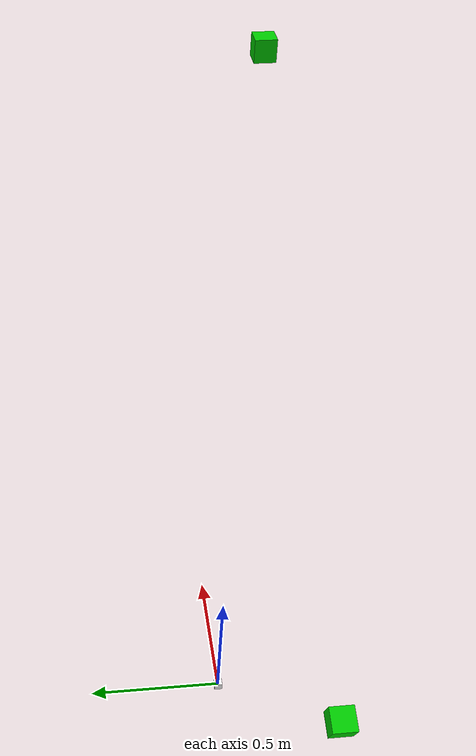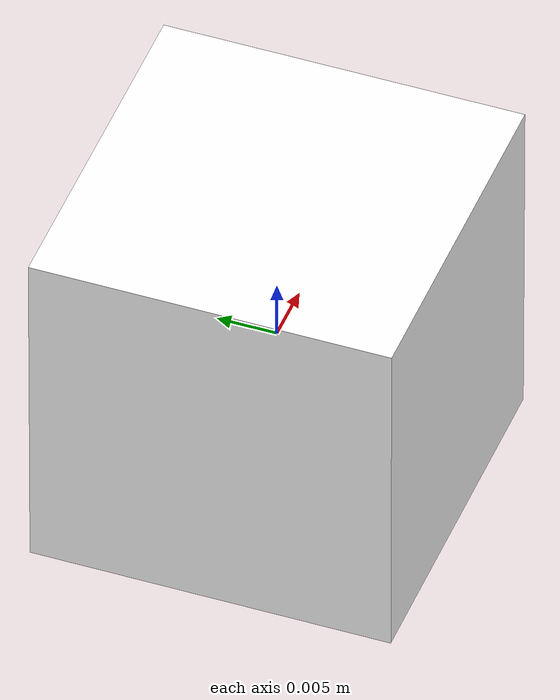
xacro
<?xml version="1.0"?>
<robot name="top_cam" xmlns:xacro="http://www.ros.org/wiki/xacro">

  <xacro:include filename="$(find top_cam)/urdf/common.urdf.xacro" />
  <xacro:include filename="$(find top_cam)/urdf/fixed_camera.urdf.xacro" />

  <!-- for gazebo requirement -->
  <!-- https://classic.gazebosim.org/tutorials?tut=ros_urdf&cat=connect_ros -->
  <link name="world" />

  <!-- base Definition -->
  <link name="base_link">
    <origin xyz="0 0 0" rpy="0 0 0"/>
    <visual>
      <geometry>
        <box size="0.03 0.03 0.03"/>
      </geometry>
      <material name="White" />
    </visual>
    <inertial>
      <mass value="0.1" />
      <origin xyz="0 0 0" rpy="0 0 0" />
      <xacro:box_inertia m="0.1" x="0.01" y="0.01" z="0.01" />
    </inertial>
  </link>

  <gazebo reference="base_link">
    <material>Gazebo/White</material>
    <turnGravityOff>true</turnGravityOff>
  </gazebo>

  <joint name="base_joint" type="fixed">
    <origin xyz="0 0 0" rpy="0 0 0" />
    <parent link="world" />
    <child  link="base_link" />
  </joint>

  <!-- camera link -->
  <xacro:fixed_camera number="0" parent="base_link"
    transX="0" transY="0" transZ="2.5" roll="-1.57" pitch="1.57" yaw="0.0" />

  <xacro:fixed_camera number="1" parent="base_link"
    transX="-1.2" transY="0.0" transZ="1.7" roll="0.0" pitch="1.2" yaw="0.0"/>
</robot>

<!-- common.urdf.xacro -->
<robot name="common" xmlns:xacro="http://www.ros.org/wiki/xacro">

  <!-- Inertial macros. Units are kg*m^2 -->
  <xacro:macro name="box_inertia" params="m x y z">
    <inertia ixx="${m*(y*y+z*z)/12}" ixy = "0" ixz = "0"
             iyy="${m*(z*z+x*x)/12}" iyz = "0"
             izz="${m*(x*x+y*y)/12}" />
  </xacro:macro>

  <material name="Green">
    <color rgba="0.0 0.8 0.0 1.0"/>
  </material>
  <material name="White">
    <color rgba="1.0 1.0 1.0 1.0"/>
  </material>

</robot>

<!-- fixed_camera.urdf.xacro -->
<robot name="fixed_camera" xmlns:xacro="http://www.ros.org/wiki/xacro">

  <xacro:property name="camera_size" value="0.05" />
  <xacro:macro name="fixed_camera" params="number parent transX transY transZ roll pitch yaw">
    <link name="camera_${number}">
      <visual>
        <origin xyz="0 0 0" rpy="0 0 0" />
        <geometry>
          <box size="${camera_size} ${camera_size} ${camera_size}" />
        </geometry>
        <material name="Green" />
      </visual>
    </link>

    <joint name="camera_${number}_joint" type="fixed">
      <origin xyz="${transX} ${transY} ${transZ}" rpy="${roll} ${pitch} ${yaw}" />
      <parent link="${parent}"/>
      <child link="camera_${number}"/>
    </joint>

    <gazebo reference="camera_${number}">
      <material>Gazebo/Green</material>
      <visualize>true</visualize>
      <turnGravityOff>true</turnGravityOff>

      <sensor type="camera" name="camera_${number}">
        <update_rate>10.0</update_rate>
        <camera name="camera_${number}">
          <pose>${camera_size/2} 0 0 0 0 0}</pose>
          <horizontal_fov>1.6</horizontal_fov><!--larger:wide-vier smaller:shallow-->
          <image>
            <width>800</width>
            <height>600</height>
            <format>R8G8B8</format>
          </image>
          <clip>
            <near>0.02</near>
            <far>300</far>
          </clip>
          <noise>
            <type>gaussian</type>
            <mean>0.0</mean>
            <stddev>0.007</stddev>
          </noise>
        </camera>

        <plugin name="camera_controller" filename="libgazebo_ros_camera.so">
          <alwaysOn>true</alwaysOn>
          <updateRate>0.0</updateRate>
          <cameraName>camera_${number}</cameraName>
          <imageTopicName>image_raw</imageTopicName>
          <cameraInfoTopicName>camera_info</cameraInfoTopicName>
          <frameName>camera_${number}</frameName>
          <hackBaseline>0.0</hackBaseline>
          <distortionK1>0.0</distortionK1>
          <distortionK2>0.0</distortionK2>
          <distortionK3>0.0</distortionK3>
          <distortionT1>0.0</distortionT1>
          <distortionT2>0.0</distortionT2>
        </plugin>
      </sensor>

    </gazebo>

  </xacro:macro>
</robot>
